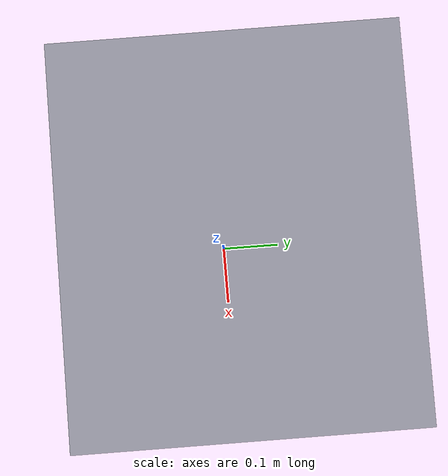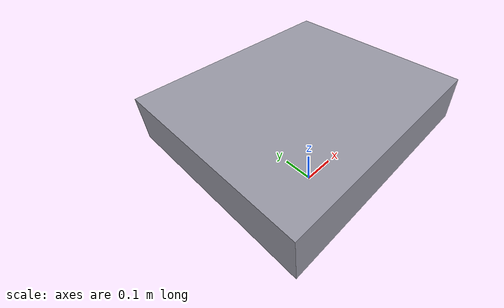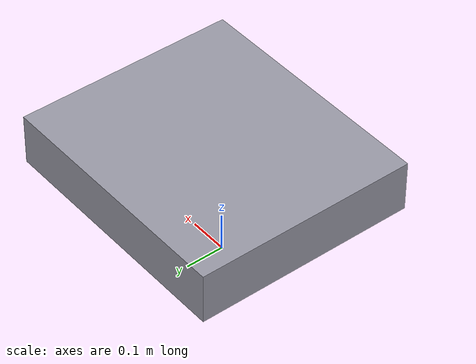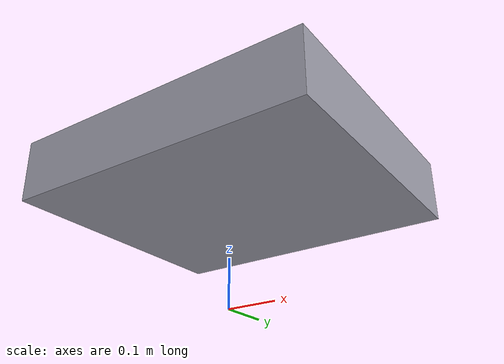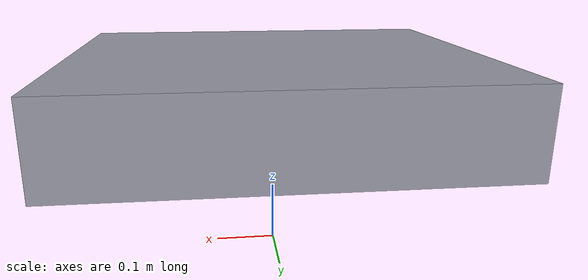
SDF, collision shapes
<?xml version="1.0" encoding="UTF-8"?>
<sdf version="1.9">
  <model name="m4e">
    <pose>0 0 .24 0 0 0</pose>
    <self_collide>false</self_collide>
    <static>false</static>

    <link name="base_link">
      <inertial>
        <mass>1.2190</mass>
        <inertia>
          <ixx>0.01753</ixx>
          <ixy>0</ixy>
          <ixz>0</ixz>
          <iyy>0.01185</iyy>
          <iyz>0</iyz>
          <izz>0.02483</izz>
        </inertia>
      </inertial>
      <gravity>true</gravity>
      <velocity_decay />

      <visual name="base_link_visual">
        <pose>0 0 0.025 0 0 -1.570796</pose>
        <transparency>0</transparency>
        <geometry>
          <mesh>
            <scale>1 1 1</scale>
            <uri>model://m4e/meshes/m4_faceless.dae</uri>
          </mesh>
        </geometry>
        <material>
          <ambient>0.3 0.3 0.3 1</ambient>
          <diffuse>0.6 0.6 0.65 1</diffuse>
          <specular>0.2 0.2 0.2 1</specular>
        </material>
      </visual>

      <collision name="base_link_collision_0">
        <pose>0 0.025 0.035 0 0 0</pose>
        <geometry>
          <box>
            <size>0.64 0.56 0.13</size>
          </box>
        </geometry>
        <surface>
          <contact>
            <ode>
              <min_depth>0.001</min_depth>
              <max_vel>0</max_vel>
            </ode>
          </contact>
          <friction>
            <ode />
          </friction>
        </surface>
      </collision>

      <sensor name="air_pressure_sensor" type="air_pressure">
        <gz_frame_id>base_link</gz_frame_id>
        <always_on>1</always_on>
        <update_rate>50</update_rate>
        <air_pressure>
          <pressure>
            <noise type="gaussian">
              <mean>0</mean>
              <stddev>3</stddev>
            </noise>
          </pressure>
        </air_pressure>
      </sensor>

      <sensor name="magnetometer_sensor" type="magnetometer">
        <gz_frame_id>base_link</gz_frame_id>
        <always_on>1</always_on>
        <update_rate>100</update_rate>
        <magnetometer>
          <x>
            <noise type="gaussian">
              <stddev>0.0001</stddev>
            </noise>
          </x>
          <y>
            <noise type="gaussian">
              <stddev>0.0001</stddev>
            </noise>
          </y>
          <z>
            <noise type="gaussian">
              <stddev>0.0001</stddev>
            </noise>
          </z>
        </magnetometer>
      </sensor>

      <sensor name="imu_sensor" type="imu">
        <gz_frame_id>base_link</gz_frame_id>
        <always_on>1</always_on>
        <update_rate>250</update_rate>
        <imu>
          <angular_velocity>
            <x>
              <noise type="gaussian">
                <mean>-0.00056509389</mean>
                <stddev>0.00066325603</stddev>
                <dynamic_bias_stddev>3.22e-05</dynamic_bias_stddev>
                <dynamic_bias_correlation_time>300</dynamic_bias_correlation_time>
              </noise>
            </x>
            <y>
              <noise type="gaussian">
                <mean>0.00088365378</mean>
                <stddev>0.00060542074</stddev>
                <dynamic_bias_stddev>7.65e-05</dynamic_bias_stddev>
                <dynamic_bias_correlation_time>300</dynamic_bias_correlation_time>
              </noise>
            </y>
            <z>
              <noise type="gaussian">
                <mean>-0.00042490432</mean>
                <stddev>0.00060836685</stddev>
                <dynamic_bias_stddev>5.37e-05</dynamic_bias_stddev>
                <dynamic_bias_correlation_time>300</dynamic_bias_correlation_time>
              </noise>
            </z>
          </angular_velocity>
          <linear_acceleration>
            <x>
              <noise type="gaussian">
                <mean>0</mean>
                <stddev>0.0022675357</stddev>
                <dynamic_bias_stddev>0.00147</dynamic_bias_stddev>
                <dynamic_bias_correlation_time>100</dynamic_bias_correlation_time>
              </noise>
            </x>
            <y>
              <noise type="gaussian">
                <mean>0</mean>
                <stddev>0.0025002416</stddev>
                <dynamic_bias_stddev>0.000975</dynamic_bias_stddev>
                <dynamic_bias_correlation_time>100</dynamic_bias_correlation_time>
              </noise>
            </y>
            <z>
              <noise type="gaussian">
                <mean>0</mean>
                <stddev>0.011341797</stddev>
                <dynamic_bias_stddev>0.00107</dynamic_bias_stddev>
                <dynamic_bias_correlation_time>100</dynamic_bias_correlation_time>
              </noise>
            </z>
          </linear_acceleration>

        </imu>
      </sensor>

      <sensor name="navsat_sensor" type="navsat">
        <gz_frame_id>base_link</gz_frame_id>
        <always_on>1</always_on>
        <update_rate>30</update_rate>
        <navsat>
          <position_sensing>
            <horizontal>
              <noise type="gaussian">
                <mean>0.0</mean>
                <stddev>4.5e-6</stddev>
              </noise>
            </horizontal>
            <vertical>
              <noise type="gaussian">
                <mean>0.0</mean>
                <stddev>1.0</stddev>
              </noise>
            </vertical>
          </position_sensing>
          <velocity_sensing>
            <horizontal>
              <noise type="gaussian">
                <mean>0.0</mean>
                <stddev>0.05</stddev>
              </noise>
            </horizontal>
            <vertical>
              <noise type="gaussian">
                <mean>0.0</mean>
                <stddev>0.1</stddev>
              </noise>
            </vertical>
          </velocity_sensing>
        </navsat>
      </sensor>

      <sensor name="perception_front_left" type="camera">
        <pose>0.30 0.045 0 0 0 0</pose>
        <always_on>true</always_on>
        <update_rate>20</update_rate>
        <topic>/drone/perception/front/left/image_raw</topic>
        <gz_frame_id>perception_front_left</gz_frame_id>
        <camera>
          <horizontal_fov>1.5708</horizontal_fov>
          <image>
            <width>704</width>
            <height>704</height>
            <format>L8</format>
          </image>
          <clip>
            <near>0.1</near>
            <far>200.0</far>
          </clip>
          <lens>
            <intrinsics>
              <fx>352.0</fx>
              <fy>352.0</fy>
              <cx>352.0</cx>
              <cy>352.0</cy>
              <s>0.0</s>
            </intrinsics>
          </lens>
        </camera>
      </sensor>

      <sensor name="perception_front_right" type="camera">
        <pose>0.30 -0.045 0 0 0 0</pose>
        <always_on>true</always_on>
        <update_rate>20</update_rate>
        <topic>/drone/perception/front/right/image_raw</topic>
        <gz_frame_id>perception_front_right</gz_frame_id>
        <camera>
          <horizontal_fov>1.5708</horizontal_fov>
          <image>
            <width>704</width>
            <height>704</height>
            <format>L8</format>
          </image>
          <clip>
            <near>0.1</near>
            <far>200.0</far>
          </clip>
          <lens>
            <intrinsics>
              <fx>352.0</fx>
              <fy>352.0</fy>
              <cx>352.0</cx>
              <cy>352.0</cy>
              <s>0.0</s>
            </intrinsics>
          </lens>
        </camera>
      </sensor>

      <!-- Backward vision, left. 90 deg H per DJI's forward/backward figure. -->
      <sensor name="perception_back_left" type="camera">
        <pose>-0.30 0.045 0 0 0 3.1416</pose>
        <always_on>true</always_on>
        <update_rate>20</update_rate>
        <topic>/drone/perception/back/left/image_raw</topic>
        <gz_frame_id>perception_back_left</gz_frame_id>
        <camera>
          <horizontal_fov>1.5708</horizontal_fov>
          <image>
            <width>704</width>
            <height>704</height>
            <format>L8</format>
          </image>
          <clip>
            <near>0.1</near>
            <far>200.0</far>
          </clip>
          <lens>
            <intrinsics>
              <fx>352.0</fx>
              <fy>352.0</fy>
              <cx>352.0</cx>
              <cy>352.0</cy>
              <s>0.0</s>
            </intrinsics>
          </lens>
        </camera>
      </sensor>

      <!-- Backward vision, right. -->
      <sensor name="perception_back_right" type="camera">
        <pose>-0.30 -0.045 0 0 0 3.1416</pose>
        <always_on>true</always_on>
        <update_rate>20</update_rate>
        <topic>/drone/perception/back/right/image_raw</topic>
        <gz_frame_id>perception_back_right</gz_frame_id>
        <camera>
          <horizontal_fov>1.5708</horizontal_fov>
          <image>
            <width>704</width>
            <height>704</height>
            <format>L8</format>
          </image>
          <clip>
            <near>0.1</near>
            <far>200.0</far>
          </clip>
          <lens>
            <intrinsics>
              <fx>352.0</fx>
              <fy>352.0</fy>
              <cx>352.0</cx>
              <cy>352.0</cy>
              <s>0.0</s>
            </intrinsics>
          </lens>
        </camera>
      </sensor>

      <!-- Lateral vision, left. DJI: 90 H x 90 V, 0.5 to 200 m. -->
      <sensor name="perception_left" type="camera">
        <pose>0 0.12 0 0 0 1.5708</pose>
        <always_on>true</always_on>
        <update_rate>20</update_rate>
        <topic>/drone/perception/left/image_raw</topic>
        <gz_frame_id>perception_left</gz_frame_id>
        <camera>
          <horizontal_fov>1.5708</horizontal_fov>
          <image>
            <width>704</width>
            <height>704</height>
            <format>L8</format>
          </image>
          <clip>
            <near>0.1</near>
            <far>200.0</far>
          </clip>
          <lens>
            <intrinsics>
              <fx>352.0</fx>
              <fy>352.0</fy>
              <cx>352.0</cx>
              <cy>352.0</cy>
              <s>0.0</s>
            </intrinsics>
          </lens>
        </camera>
      </sensor>

      <!-- Lateral vision, right. -->
      <sensor name="perception_right" type="camera">
        <pose>0 -0.12 0 0 0 -1.5708</pose>
        <always_on>true</always_on>
        <update_rate>20</update_rate>
        <topic>/drone/perception/right/image_raw</topic>
        <gz_frame_id>perception_right</gz_frame_id>
        <camera>
          <horizontal_fov>1.5708</horizontal_fov>
          <image>
            <width>704</width>
            <height>704</height>
            <format>L8</format>
          </image>
          <clip>
            <near>0.1</near>
            <far>200.0</far>
          </clip>
          <lens>
            <intrinsics>
              <fx>352.0</fx>
              <fy>352.0</fy>
              <cx>352.0</cx>
              <cy>352.0</cy>
              <s>0.0</s>
            </intrinsics>
          </lens>
        </camera>
      </sensor>

      <!-- Downward vision. DJI: 160 deg, 0.3 to 18.8 m. Used for landing and low-altitude hold. -->
      <sensor name="perception_down" type="camera">
        <pose>0 0 -0.04 0 1.5708 0</pose>
        <always_on>true</always_on>
        <update_rate>20</update_rate>
        <topic>/drone/perception/down/image_raw</topic>
        <gz_frame_id>perception_down</gz_frame_id>
        <camera>
          <horizontal_fov>2.7925</horizontal_fov>
          <image>
            <width>640</width>
            <height>640</height>
            <format>L8</format>
          </image>
          <clip>
            <near>0.1</near>
            <far>20.0</far>
          </clip>
          <lens>
            <intrinsics>
              <fx>56.4</fx>
              <fy>56.4</fy>
              <cx>320.0</cx>
              <cy>320.0</cy>
              <s>0.0</s>
            </intrinsics>
          </lens>
        </camera>
      </sensor>
    </link>

    <link name="rotor_0">
      <gravity>true</gravity>
      <self_collide>false</self_collide>
      <velocity_decay />
      <pose>0.11551 0.18056 0.06 0 0 0</pose>
      <inertial>
        <mass>0.016076923076923075</mass>
        <inertia>
          <ixx>3.8464910483993325e-07</ixx>
          <iyy>2.6115851691700804e-05</iyy>
          <izz>2.649858234714004e-05</izz>
        </inertia>
      </inertial>
      <visual name="rotor_0_visual">
        <pose>-0.022 -0.14638461538461536 -0.016 0 0 0</pose>
        <geometry>
          <mesh>
            <scale>0.8461538461538461 0.8461538461538461 0.8461538461538461</scale>
            <uri>model://x500_base/meshes/1345_prop_ccw.stl</uri>
          </mesh>
        </geometry>
        <material>
          <script>
            <name>Gazebo/DarkGrey</name>
            <uri>file://media/materials/scripts/gazebo.material</uri>
          </script>
        </material>
      </visual>
      <collision name="rotor_0_collision">
        <pose>0 0 0 0 0 0 </pose>
        <geometry>
          <box>
            <size>0.2792307692307692 0.016923076923076923 0.0008461538461538462</size>
          </box>
        </geometry>
        <surface>
          <contact>
            <ode>
              <min_depth>0.001</min_depth>
              <max_vel>0</max_vel>
            </ode>
          </contact>
          <friction>
            <ode />
          </friction>
        </surface>
      </collision>
    </link>

    <joint name="rotor_0_joint" type="revolute">
      <parent>base_link</parent>
      <child>rotor_0</child>
      <axis>
        <xyz>0 0 1</xyz>
        <limit>
          <lower>-1e+16</lower>
          <upper>1e+16</upper>
        </limit>
        <dynamics>
          <spring_reference>0</spring_reference>
          <spring_stiffness>0</spring_stiffness>
        </dynamics>
      </axis>
    </joint>

    <link name="rotor_1">
      <gravity>true</gravity>
      <self_collide>false</self_collide>
      <velocity_decay />
      <pose>-0.16500 -0.15826 0.06 0 0 0</pose>
      <inertial>
        <mass>0.016076923076923075</mass>
        <inertia>
          <ixx>3.8464910483993325e-07</ixx>
          <iyy>2.6115851691700804e-05</iyy>
          <izz>2.649858234714004e-05</izz>
        </inertia>
      </inertial>
      <visual name="rotor_1_visual">
        <pose>-0.022 -0.14638461538461536 -0.016 0 0 0</pose>
        <geometry>
          <mesh>
            <scale>0.8461538461538461 0.8461538461538461 0.8461538461538461</scale>
            <uri>model://x500_base/meshes/1345_prop_ccw.stl</uri>
          </mesh>
        </geometry>
        <material>
          <script>
            <name>Gazebo/DarkGrey</name>
            <uri>file://media/materials/scripts/gazebo.material</uri>
          </script>
        </material>
      </visual>
      <collision name="rotor_1_collision">
        <pose>0 0 0 0 0 0 </pose>
        <geometry>
          <box>
            <size>0.2792307692307692 0.016923076923076923 0.0008461538461538462</size>
          </box>
        </geometry>
        <surface>
          <contact>
            <ode>
              <min_depth>0.001</min_depth>
              <max_vel>0</max_vel>
            </ode>
          </contact>
          <friction>
            <ode />
          </friction>
        </surface>
      </collision>
    </link>

    <joint name="rotor_1_joint" type="revolute">

      <parent>base_link</parent>
      <child>rotor_1</child>
      <axis>
        <xyz>0 0 1</xyz>
        <limit>
          <lower>-1e+16</lower>
          <upper>1e+16</upper>
        </limit>
        <dynamics>
          <spring_reference>0</spring_reference>
          <spring_stiffness>0</spring_stiffness>
        </dynamics>
      </axis>
    </joint>

    <link name="rotor_2">
      <gravity>true</gravity>
      <self_collide>false</self_collide>
      <velocity_decay />
      <pose>-0.16500 0.15826 0.06 0 0 0</pose>
      <inertial>
        <mass>0.016076923076923075</mass>
        <inertia>
          <ixx>3.8464910483993325e-07</ixx>
          <iyy>2.6115851691700804e-05</iyy>
          <izz>2.649858234714004e-05</izz>
        </inertia>
      </inertial>
      <visual name="rotor_2_visual">
        <pose>-0.022 -0.14638461538461536 -0.016 0 0 0</pose>
        <geometry>
          <mesh>
            <scale>0.8461538461538461 0.8461538461538461 0.8461538461538461</scale>
            <uri>model://x500_base/meshes/1345_prop_cw.stl</uri>
          </mesh>
        </geometry>
        <material>
          <script>
            <name>Gazebo/DarkGrey</name>
            <uri>file://media/materials/scripts/gazebo.material</uri>
          </script>
        </material>
      </visual>
      <collision name="rotor_2_collision">
        <pose>0 0 0 0 0 0 </pose>
        <geometry>
          <box>
            <size>0.2792307692307692 0.016923076923076923 0.0008461538461538462</size>
          </box>
        </geometry>
        <surface>
          <contact>
            <ode>
              <min_depth>0.001</min_depth>
              <max_vel>0</max_vel>
            </ode>
          </contact>
          <friction>
            <ode />
          </friction>
        </surface>
      </collision>
    </link>

    <joint name="rotor_2_joint" type="revolute">
      <parent>base_link</parent>
      <child>rotor_2</child>
      <axis>
        <xyz>0 0 1</xyz>
        <limit>
          <lower>-1e+16</lower>
          <upper>1e+16</upper>
        </limit>
        <dynamics>
          <spring_reference>0</spring_reference>
          <spring_stiffness>0</spring_stiffness>
        </dynamics>
      </axis>
    </joint>

    <link name="rotor_3">
      <gravity>true</gravity>

      <self_collide>false</self_collide>
      <velocity_decay />
      <pose>0.11551 -0.18056 0.06 0 0 0</pose>
      <inertial>
        <mass>0.016076923076923075</mass>
        <inertia>
          <ixx>3.8464910483993325e-07</ixx>
          <iyy>2.6115851691700804e-05</iyy>
          <izz>2.649858234714004e-05</izz>
        </inertia>
      </inertial>
      <visual name="rotor_3_visual">
        <pose>-0.022 -0.14638461538461536 -0.016 0 0 0</pose>
        <geometry>
          <mesh>
            <scale>0.8461538461538461 0.8461538461538461 0.8461538461538461</scale>
            <uri>model://x500_base/meshes/1345_prop_cw.stl</uri>
          </mesh>
        </geometry>
        <material>
          <script>
            <name>Gazebo/DarkGrey</name>
            <uri>file://media/materials/scripts/gazebo.material</uri>
          </script>
        </material>
      </visual>
      <collision name="rotor_3_collision">
        <pose>0 0 0 0 0 0 </pose>
        <geometry>
          <box>
            <size>0.2792307692307692 0.016923076923076923 0.0008461538461538462</size>
          </box>
        </geometry>
        <surface>
          <contact>
            <ode>
              <min_depth>0.001</min_depth>
              <max_vel>0</max_vel>
            </ode>
          </contact>
          <friction>
            <ode />
          </friction>
        </surface>
      </collision>
    </link>

    <joint name="rotor_3_joint" type="revolute">
      <parent>base_link</parent>
      <child>rotor_3</child>
      <axis>
        <xyz>0 0 1</xyz>
        <limit>
          <lower>-1e+16</lower>
          <upper>1e+16</upper>
        </limit>
        <dynamics>
          <spring_reference>0</spring_reference>
          <spring_stiffness>0</spring_stiffness>
        </dynamics>
      </axis>
    </joint>

    <plugin filename="gz-sim-multicopter-motor-model-system" name="gz::sim::systems::MulticopterMotorModel">
      <jointName>rotor_0_joint</jointName>
      <linkName>rotor_0</linkName>
      <turningDirection>ccw</turningDirection>
      <timeConstantUp>0.0125</timeConstantUp>
      <timeConstantDown>0.025</timeConstantDown>
      <maxRotVelocity>1100</maxRotVelocity>
      <motorConstant>8.54858e-06</motorConstant>
      <momentConstant>0.016</momentConstant>
      <commandSubTopic>command/motor_speed</commandSubTopic>
      <motorNumber>0</motorNumber>
      <rotorDragCoefficient>8.06428e-05</rotorDragCoefficient>
      <rollingMomentCoefficient>1e-06</rollingMomentCoefficient>
      <motorVelocityTopic>rotor_0_velocity</motorVelocityTopic>
    </plugin>

    <plugin filename="gz-sim-multicopter-motor-model-system" name="gz::sim::systems::MulticopterMotorModel">
      <jointName>rotor_1_joint</jointName>
      <linkName>rotor_1</linkName>
      <turningDirection>ccw</turningDirection>
      <timeConstantUp>0.0125</timeConstantUp>
      <timeConstantDown>0.025</timeConstantDown>
      <maxRotVelocity>1100</maxRotVelocity>
      <motorConstant>8.54858e-06</motorConstant>
      <momentConstant>0.016</momentConstant>
      <commandSubTopic>command/motor_speed</commandSubTopic>
      <motorNumber>1</motorNumber>
      <rotorDragCoefficient>8.06428e-05</rotorDragCoefficient>
      <rollingMomentCoefficient>1e-06</rollingMomentCoefficient>
      <motorVelocityTopic>rotor_1_velocity</motorVelocityTopic>
    </plugin>

    <plugin filename="gz-sim-multicopter-motor-model-system" name="gz::sim::systems::MulticopterMotorModel">
      <jointName>rotor_2_joint</jointName>
      <linkName>rotor_2</linkName>
      <turningDirection>cw</turningDirection>
      <timeConstantUp>0.0125</timeConstantUp>
      <timeConstantDown>0.025</timeConstantDown>
      <maxRotVelocity>1100</maxRotVelocity>
      <motorConstant>8.54858e-06</motorConstant>
      <momentConstant>0.016</momentConstant>
      <commandSubTopic>command/motor_speed</commandSubTopic>
      <motorNumber>2</motorNumber>
      <rotorDragCoefficient>8.06428e-05</rotorDragCoefficient>
      <rollingMomentCoefficient>1e-06</rollingMomentCoefficient>
      <motorVelocityTopic>rotor_2_velocity</motorVelocityTopic>
    </plugin>

    <plugin filename="gz-sim-multicopter-motor-model-system" name="gz::sim::systems::MulticopterMotorModel">
      <jointName>rotor_3_joint</jointName>
      <linkName>rotor_3</linkName>
      <turningDirection>cw</turningDirection>
      <timeConstantUp>0.0125</timeConstantUp>
      <timeConstantDown>0.025</timeConstantDown>
      <maxRotVelocity>1100</maxRotVelocity>
      <motorConstant>8.54858e-06</motorConstant>
      <momentConstant>0.016</momentConstant>
      <commandSubTopic>command/motor_speed</commandSubTopic>
      <motorNumber>3</motorNumber>
      <rotorDragCoefficient>8.06428e-05</rotorDragCoefficient>
      <rollingMomentCoefficient>1e-06</rollingMomentCoefficient>
      <motorVelocityTopic>rotor_3_velocity</motorVelocityTopic>
    </plugin>
  </model>
</sdf>
